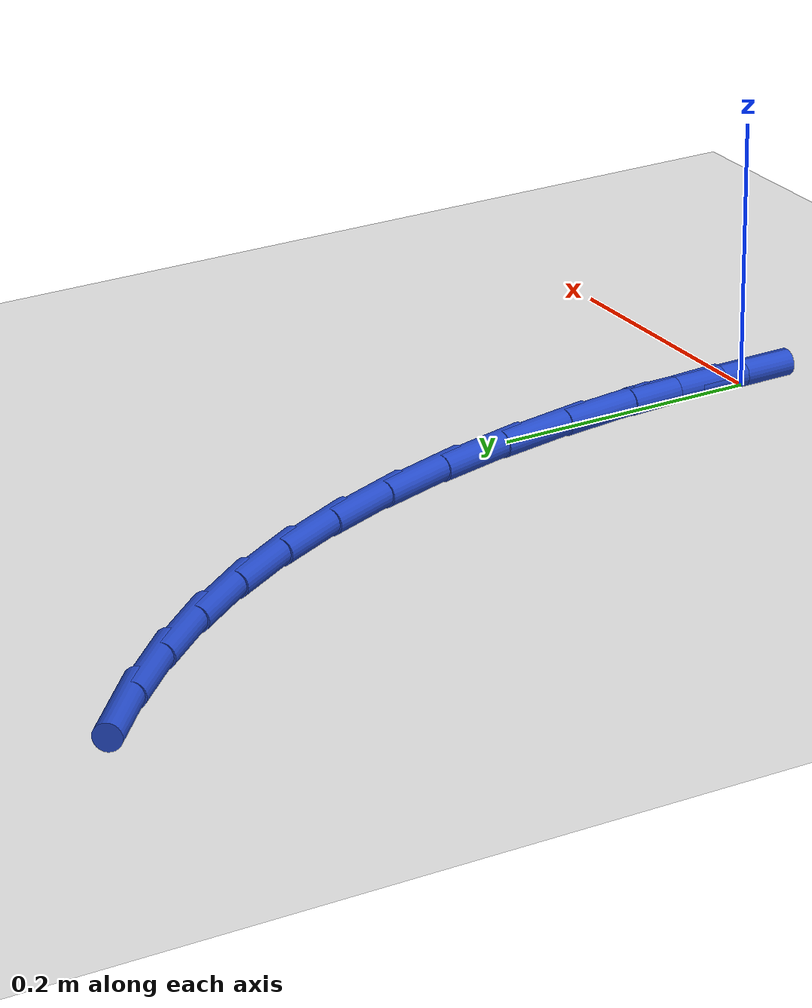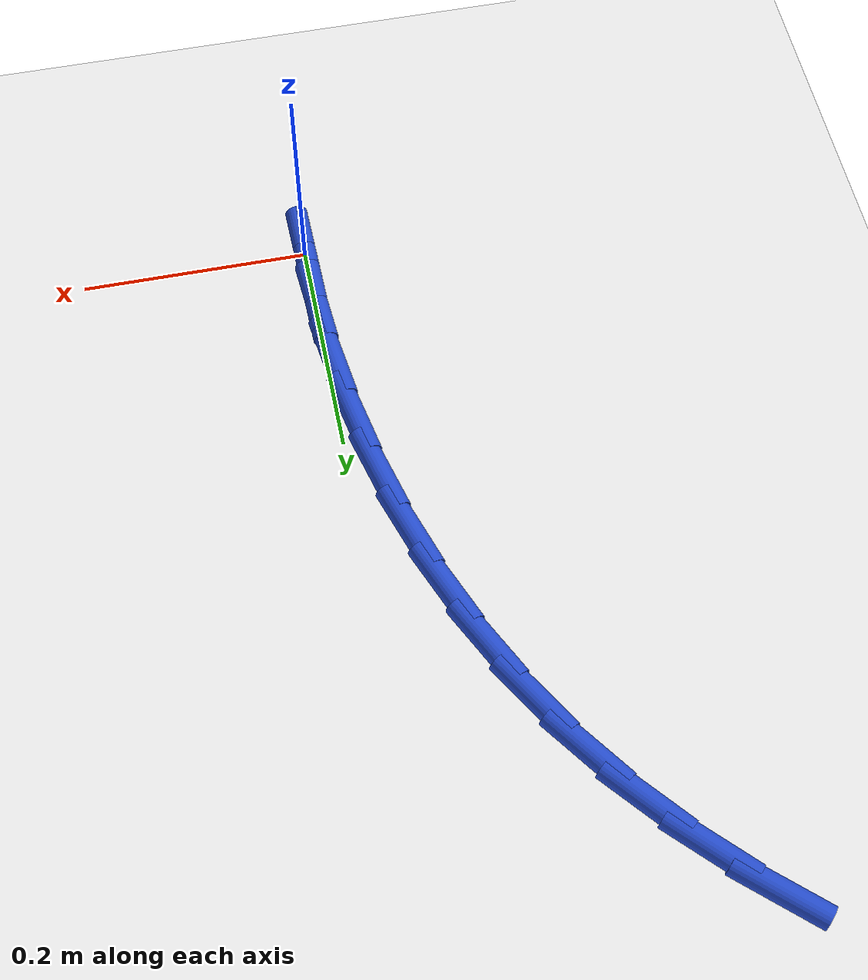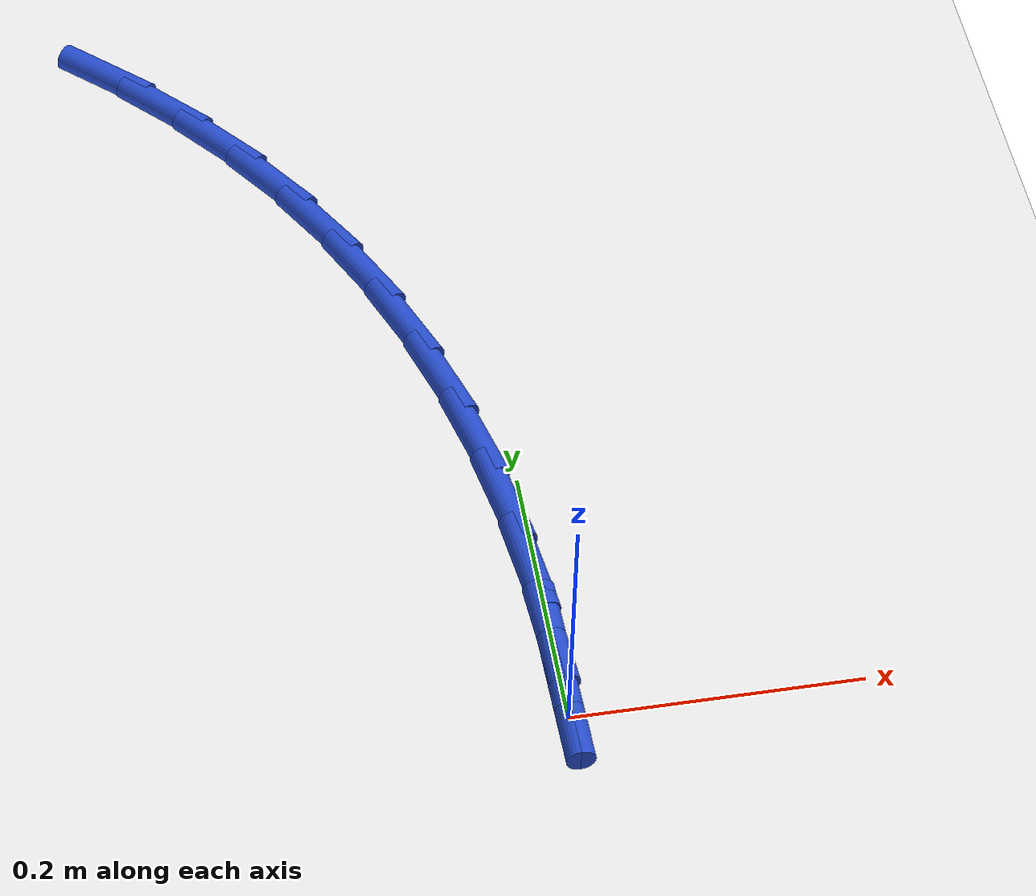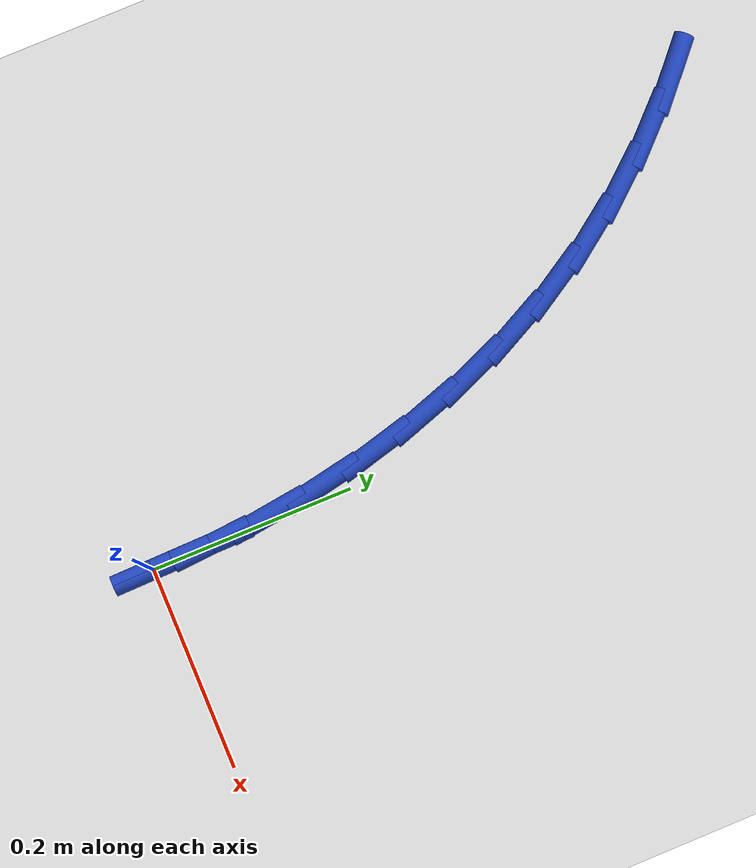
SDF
<sdf version="1.6">
 <world name="default">
  <model name="ground_plane">
   <static>1</static>
   <link name="link">
    <collision name="collision">
     <geometry><plane><normal>0 0 1</normal><size>100 100</size></plane></geometry>
     <surface><friction><ode><mu>100</mu><mu2>50</mu2></ode></friction></surface>
    </collision>
    <visual name="visual">
     <cast_shadows>0</cast_shadows>
     <geometry><plane><normal>0 0 1</normal><size>100 100</size></plane></geometry>
     <material>
      <script><uri>file://media/materials/scripts/gazebo.material</uri><name>Gazebo/WhiteGlow</name></script>
     </material>
    </visual>
   </link>
  </model>
  <model name="line">
   <link name="link_0">
    <pose>2.7755575615628914e-17 -6.938893903907228e-17 0.01 0 1.57 -1.551218035534405</pose>
    <collision name="collision">
     <geometry><cylinder><radius>0.01</radius><length>0.08</length></cylinder></geometry>
    </collision>
    <visual name="visual">
     <material>
      <script><name>Gazebo/Blue</name><uri>file://media/materials/scripts/gazebo.material</uri></script>
     </material>
     <geometry><cylinder><radius>0.01</radius><length>0.08</length></cylinder></geometry>
    </visual>
   </link>
   <link name="link_1">
    <pose>-0.0011718113861853945 0.0598449397155806 0.01 0 1.57 -1.4968670855417514</pose>
    <collision name="collision">
     <geometry><cylinder><radius>0.01</radius><length>0.08</length></cylinder></geometry>
    </collision>
    <visual name="visual">
     <material>
      <script><name>Gazebo/Blue</name><uri>file://media/materials/scripts/gazebo.material</uri></script>
     </material>
     <geometry><cylinder><radius>0.01</radius><length>0.08</length></cylinder></geometry>
    </visual>
   </link>
   <link name="link_2">
    <pose>-0.005584488192368473 0.11942399924531093 0.01 0 1.57 -1.4400508535455618</pose>
    <collision name="collision">
     <geometry><cylinder><radius>0.01</radius><length>0.08</length></cylinder></geometry>
    </collision>
    <visual name="visual">
     <material>
      <script><name>Gazebo/Blue</name><uri>file://media/materials/scripts/gazebo.material</uri></script>
     </material>
     <geometry><cylinder><radius>0.01</radius><length>0.08</length></cylinder></geometry>
    </visual>
   </link>
   <link name="link_3">
    <pose>-0.013343367466763878 0.17842885457770724 0.01 0 1.57 -1.3802597776558283</pose>
    <collision name="collision">
     <geometry><cylinder><radius>0.01</radius><length>0.08</length></cylinder></geometry>
    </collision>
    <visual name="visual">
     <material>
      <script><name>Gazebo/Blue</name><uri>file://media/materials/scripts/gazebo.material</uri></script>
     </material>
     <geometry><cylinder><radius>0.01</radius><length>0.08</length></cylinder></geometry>
    </visual>
   </link>
   <link name="link_4">
    <pose>-0.024553786257586273 0.23655118170128567 0.01 0 1.57 -1.3170023600256127</pose>
    <collision name="collision">
     <geometry><cylinder><radius>0.01</radius><length>0.08</length></cylinder></geometry>
    </collision>
    <visual name="visual">
     <material>
      <script><name>Gazebo/Blue</name><uri>file://media/materials/scripts/gazebo.material</uri></script>
     </material>
     <geometry><cylinder><radius>0.01</radius><length>0.08</length></cylinder></geometry>
    </visual>
   </link>
   <link name="link_5">
    <pose>-0.03932108161305035 0.2934826566045626 0.01 0 1.57 -1.2498240679403239</pose>
    <collision name="collision">
     <geometry><cylinder><radius>0.01</radius><length>0.08</length></cylinder></geometry>
    </collision>
    <visual name="visual">
     <material>
      <script><name>Gazebo/Blue</name><uri>file://media/materials/scripts/gazebo.material</uri></script>
     </material>
     <geometry><cylinder><radius>0.01</radius><length>0.08</length></cylinder></geometry>
    </visual>
   </link>
   <link name="link_6">
    <pose>-0.05775059058137075 0.34891495527605404 0.01 0 1.57 -1.1783369676270923</pose>
    <collision name="collision">
     <geometry><cylinder><radius>0.01</radius><length>0.08</length></cylinder></geometry>
    </collision>
    <visual name="visual">
     <material>
      <script><name>Gazebo/Blue</name><uri>file://media/materials/scripts/gazebo.material</uri></script>
     </material>
     <geometry><cylinder><radius>0.01</radius><length>0.08</length></cylinder></geometry>
    </visual>
   </link>
   <link name="link_7">
    <pose>-0.07994765021076214 0.4025397537042764 0.01 0 1.57 -1.102261230266201</pose>
    <collision name="collision">
     <geometry><cylinder><radius>0.01</radius><length>0.08</length></cylinder></geometry>
    </collision>
    <visual name="visual">
     <material>
      <script><name>Gazebo/Blue</name><uri>file://media/materials/scripts/gazebo.material</uri></script>
     </material>
     <geometry><cylinder><radius>0.01</radius><length>0.08</length></cylinder></geometry>
    </visual>
   </link>
   <link name="link_8">
    <pose>-0.10601759754943918 0.4540487278777458 0.01 0 1.57 -1.0214780912984869</pose>
    <collision name="collision">
     <geometry><cylinder><radius>0.01</radius><length>0.08</length></cylinder></geometry>
    </collision>
    <visual name="visual">
     <material>
      <script><name>Gazebo/Blue</name><uri>file://media/materials/scripts/gazebo.material</uri></script>
     </material>
     <geometry><cylinder><radius>0.01</radius><length>0.08</length></cylinder></geometry>
    </visual>
   </link>
   <link name="link_9">
    <pose>-0.13606574697078946 0.5031335717311645 0.01 0 1.57 -0.9382489857738033</pose>
    <collision name="collision">
     <geometry><cylinder><radius>0.01</radius><length>0.08</length></cylinder></geometry>
    </collision>
    <visual name="visual">
     <material>
      <script><name>Gazebo/Blue</name><uri>file://media/materials/scripts/gazebo.material</uri></script>
     </material>
     <geometry><cylinder><radius>0.01</radius><length>0.08</length></cylinder></geometry>
    </visual>
   </link>
   <link name="link_10">
    <pose>-0.17009978923406582 0.5495632442445051 0.01 0 1.57 -0.8599934296159824</pose>
    <collision name="collision">
     <geometry><cylinder><radius>0.01</radius><length>0.08</length></cylinder></geometry>
    </collision>
    <visual name="visual">
     <material>
      <script><name>Gazebo/Blue</name><uri>file://media/materials/scripts/gazebo.material</uri></script>
     </material>
     <geometry><cylinder><radius>0.01</radius><length>0.08</length></cylinder></geometry>
    </visual>
   </link>
   <link name="link_11">
    <pose>-0.20780628617498587 0.5933608646338098 0.01 0 1.57 -0.788332115368468</pose>
    <collision name="collision">
     <geometry><cylinder><radius>0.01</radius><length>0.08</length></cylinder></geometry>
    </collision>
    <visual name="visual">
     <material>
      <script><name>Gazebo/Blue</name><uri>file://media/materials/scripts/gazebo.material</uri></script>
     </material>
     <geometry><cylinder><radius>0.01</radius><length>0.08</length></cylinder></geometry>
    </visual>
   </link>
   <link name="link_12">
    <pose>-0.24880586665060603 0.6346017353356079 0.01 0 1.57 -0.7231381024792287</pose>
    <collision name="collision">
     <geometry><cylinder><radius>0.01</radius><length>0.08</length></cylinder></geometry>
    </collision>
    <visual name="visual">
     <material>
      <script><name>Gazebo/Blue</name><uri>file://media/materials/scripts/gazebo.material</uri></script>
     </material>
     <geometry><cylinder><radius>0.01</radius><length>0.08</length></cylinder></geometry>
    </visual>
   </link>
   <link name="link_120">
    <pose>2.7755575615628914e-17 -5.551115123125783e-17 0.01 0 1.57 -1.5516330043702526</pose>
    <collision name="collision">
     <geometry><cylinder><radius>0.01</radius><length>0.08</length></cylinder></geometry>
    </collision>
    <visual name="visual">
     <material>
      <script><name>Gazebo/Blue</name><uri>file://media/materials/scripts/gazebo.material</uri></script>
     </material>
     <geometry><cylinder><radius>0.01</radius><length>0.08</length></cylinder></geometry>
    </visual>
   </link>
   <link name="link_121">
    <pose>-0.0011470593274812077 0.059849690256079544 0.01 0 1.57 -1.5516330043702526</pose>
    <collision name="collision">
     <geometry><cylinder><radius>0.01</radius><length>0.08</length></cylinder></geometry>
    </collision>
    <visual name="visual">
     <material>
      <script><name>Gazebo/Blue</name><uri>file://media/materials/scripts/gazebo.material</uri></script>
     </material>
     <geometry><cylinder><radius>0.01</radius><length>0.08</length></cylinder></geometry>
    </visual>
   </link>
  </model>
 </world>
</sdf>
